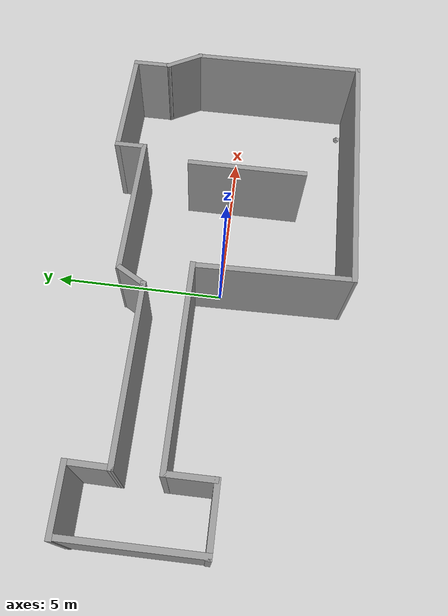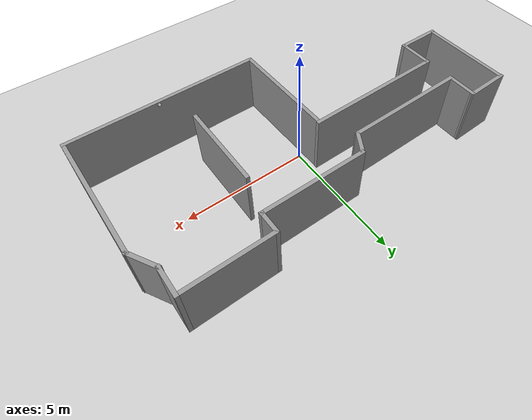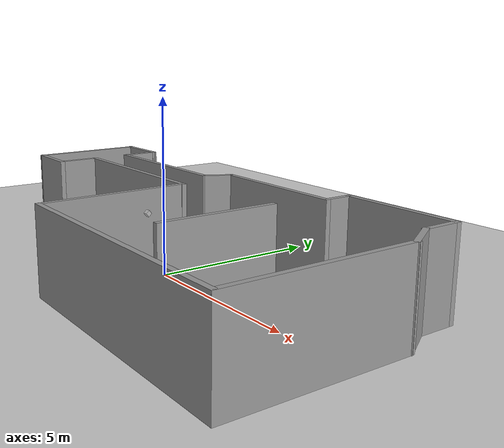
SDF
<?xml version="1.0" ?>
<!-- |    This document was autogenerated by xacro from src/ir_2526/ir_base/worlds/iaslab_empty_ur.sdf.xacro | -->
<!-- |    EDITING THIS FILE BY HAND IS NOT RECOMMENDED                                 | -->
<sdf version="1.6">
  <world name="default">
    <!-- Plugin for simulating physics -->
    <plugin filename="gz-sim-physics-system" name="gz::sim::systems::Physics">
      <engine>
        <filename>libgz-physics-bullet-featherstone-plugin.so</filename>
      </engine>
    </plugin>
    <!-- Plugin for handling user commands -->
    <plugin filename="gz-sim-user-commands-system" name="gz::sim::systems::UserCommands">
    </plugin>
    <!-- Plugin for broadcasting scene updates -->
    <plugin filename="gz-sim-scene-broadcaster-system" name="gz::sim::systems::SceneBroadcaster">
    </plugin>
    <!-- Plugin for handling sensors like the LIDAR -->
    <plugin filename="gz-sim-sensors-system" name="gz::sim::systems::Sensors">
      <render_engine>ogre2</render_engine>
    </plugin>
    <!-- Plugin for IMU -->
    <plugin filename="gz-sim-imu-system" name="gz::sim::systems::Imu">
    </plugin>
    <!-- To add realistic gravity, do: 0.0 0.0 -9.8, otherwise do 0.0 0.0 0.0 -->
    <gravity>0.0 0.0 -9.8</gravity>
    <!-- Include a model of the Sun from an external URI -->
    <include>
      <uri>
        https://fuel.gazebosim.org/1.0/OpenRobotics/models/Sun
      </uri>
    </include>
    <!-- Local Ground Plane with modified friction -->
    <model name="ground_plane">
      <static>true</static>
      <link name="link">
        <collision name="collision">
          <geometry>
            <plane>
              <normal>0 0 1</normal>
            </plane>
          </geometry>
          <surface>
            <friction>
              <torsional>
                <coefficient>0.0</coefficient>
              </torsional>
            </friction>
          </surface>
        </collision>
        <visual name="visual">
          <geometry>
            <plane>
              <normal>0 0 1</normal>
              <size>100 100</size>
            </plane>
          </geometry>
          <material>
            <ambient>0.8 0.8 0.8 1</ambient>
            <diffuse>0.8 0.8 0.8 1</diffuse>
            <specular>0.8 0.8 0.8 1</specular>
          </material>
        </visual>
      </link>
    </model>
    <!-- Define scene properties -->
    <scene>
      <shadows>false</shadows>
    </scene>
    <!-- Walls as separate static models -->
    <model name="Wall_1">
      <static>1</static>
      <link name="link">
        <collision name="collision">
          <geometry>
            <box>
              <size>1.2 0.15 2.5</size>
            </box>
          </geometry>
          <pose>0 0 1.25 0 0 0</pose>
        </collision>
        <visual name="visual">
          <geometry>
            <box>
              <size>1.2 0.15 2.5</size>
            </box>
          </geometry>
          <pose>0 0 1.25 0 0 0</pose>
          <material>
            <script>
              <uri>file://media/materials/scripts/gazebo.material</uri>
              <name>Gazebo/Grey</name>
            </script>
            <ambient>1 1 1 1</ambient>
          </material>
        </visual>
      </link>
      <pose>-5.79107 2.49368 0 0 0 1.5708</pose>
    </model>
    <model name="Wall_2">
      <static>1</static>
      <link name="link">
        <collision name="collision">
          <geometry>
            <box>
              <size>1.79256 0.15 2.5</size>
            </box>
          </geometry>
          <pose>0 0 1.25 0 0 0</pose>
        </collision>
        <visual name="visual">
          <geometry>
            <box>
              <size>1.79256 0.15 2.5</size>
            </box>
          </geometry>
          <pose>0 0 1.25 0 0 0</pose>
          <material>
            <script>
              <uri>file://media/materials/scripts/gazebo.material</uri>
              <name>Gazebo/Grey</name>
            </script>
            <ambient>1 1 1 1</ambient>
          </material>
        </visual>
      </link>
      <pose>-6.61216 3.04631 0 0 0 -3.1203</pose>
    </model>
    <model name="Wall_3">
      <static>1</static>
      <link name="link">
        <collision name="collision">
          <geometry>
            <box>
              <size>3.68565 0.15 2.5</size>
            </box>
          </geometry>
          <pose>0 0 1.25 0 0 0</pose>
        </collision>
        <visual name="visual">
          <geometry>
            <box>
              <size>3.68565 0.15 2.5</size>
            </box>
          </geometry>
          <pose>0 0 1.25 0 0 0</pose>
          <material>
            <script>
              <uri>file://media/materials/scripts/gazebo.material</uri>
              <name>Gazebo/Grey</name>
            </script>
            <ambient>1 1 1 1</ambient>
          </material>
        </visual>
      </link>
      <pose>-7.38434 1.26123 0 0 0 -1.5545</pose>
    </model>
    <model name="Wall_4">
      <static>1</static>
      <link name="link">
        <collision name="collision">
          <geometry>
            <box>
              <size>1.77744 0.15 2.5</size>
            </box>
          </geometry>
          <pose>0 0 1.25 0 0 0</pose>
        </collision>
        <visual name="visual">
          <geometry>
            <box>
              <size>1.77744 0.15 2.5</size>
            </box>
          </geometry>
          <pose>0 0 1.25 0 0 0</pose>
          <material>
            <script>
              <uri>file://media/materials/scripts/gazebo.material</uri>
              <name>Gazebo/Grey</name>
            </script>
            <ambient>1 1 1 1</ambient>
          </material>
        </visual>
      </link>
      <pose>-6.56193 -0.508986 0 0 0 -0.003224</pose>
    </model>
    <model name="Wall_5">
      <static>1</static>
      <link name="link">
        <collision name="collision">
          <geometry>
            <box>
              <size>1.35672 0.15 2.5</size>
            </box>
          </geometry>
          <pose>0 0 1.25 0 0 0</pose>
        </collision>
        <visual name="visual">
          <geometry>
            <box>
              <size>1.35672 0.15 2.5</size>
            </box>
          </geometry>
          <pose>0 0 1.25 0 0 0</pose>
          <material>
            <script>
              <uri>file://media/materials/scripts/gazebo.material</uri>
              <name>Gazebo/Grey</name>
            </script>
            <ambient>1 1 1 1</ambient>
          </material>
        </visual>
      </link>
      <pose>-5.75827 0.136795 0 0 0 1.5846</pose>
    </model>
    <model name="Wall_6">
      <static>1</static>
      <link name="link">
        <collision name="collision">
          <geometry>
            <box>
              <size>5.64664 0.15 2.5</size>
            </box>
          </geometry>
          <pose>0 0 1.25 0 0 0</pose>
        </collision>
        <visual name="visual">
          <geometry>
            <box>
              <size>5.64664 0.15 2.5</size>
            </box>
          </geometry>
          <pose>0 0 1.25 0 0 0</pose>
          <material>
            <script>
              <uri>file://media/materials/scripts/gazebo.material</uri>
              <name>Gazebo/Grey</name>
            </script>
            <ambient>1 1 1 1</ambient>
          </material>
        </visual>
      </link>
      <pose>-3.02009 0.766397 0 0 0 0.007796</pose>
    </model>
    <model name="Wall_7">
      <static>1</static>
      <link name="link">
        <collision name="collision">
          <geometry>
            <box>
              <size>4.38998 0.15 2.5</size>
            </box>
          </geometry>
          <pose>0 0 1.25 0 0 0</pose>
        </collision>
        <visual name="visual">
          <geometry>
            <box>
              <size>4.38998 0.15 2.5</size>
            </box>
          </geometry>
          <pose>0 0 1.25 0 0 0</pose>
          <material>
            <script>
              <uri>file://media/materials/scripts/gazebo.material</uri>
              <name>Gazebo/Grey</name>
            </script>
            <ambient>1 1 1 1</ambient>
          </material>
        </visual>
      </link>
      <pose>-0.242291 -1.34162 0 0 0 -1.54891</pose>
    </model>
    <model name="Wall_8">
      <static>1</static>
      <link name="link">
        <collision name="collision">
          <geometry>
            <box>
              <size>7.75 0.15 2.5</size>
            </box>
          </geometry>
          <pose>0 0 1.25 0 0 0</pose>
        </collision>
        <visual name="visual">
          <geometry>
            <box>
              <size>7.75 0.15 2.5</size>
            </box>
          </geometry>
          <pose>0 0 1.25 0 0 0</pose>
          <material>
            <script>
              <uri>file://media/materials/scripts/gazebo.material</uri>
              <name>Gazebo/Grey</name>
            </script>
            <ambient>1 1 1 1</ambient>
          </material>
        </visual>
      </link>
      <pose>3.60739 -3.55107 0 0 0 0</pose>
    </model>
    <model name="Wall_9">
      <static>1</static>
      <link name="link">
        <collision name="collision">
          <geometry>
            <box>
              <size>5.25 0.15 2.5</size>
            </box>
          </geometry>
          <pose>0 0 1.25 0 0 0</pose>
        </collision>
        <visual name="visual">
          <geometry>
            <box>
              <size>5.25 0.15 2.5</size>
            </box>
          </geometry>
          <pose>0 0 1.25 0 0 0</pose>
          <material>
            <script>
              <uri>file://media/materials/scripts/gazebo.material</uri>
              <name>Gazebo/Grey</name>
            </script>
            <ambient>1 1 1 1</ambient>
          </material>
        </visual>
      </link>
      <pose>7.40739 -1.00107 0 0 0 1.5708</pose>
    </model>
    <model name="Wall_10">
      <static>1</static>
      <link name="link">
        <collision name="collision">
          <geometry>
            <box>
              <size>1.25 0.15 2.5</size>
            </box>
          </geometry>
          <pose>0 0 1.25 0 0 0</pose>
        </collision>
        <visual name="visual">
          <geometry>
            <box>
              <size>1.25 0.15 2.5</size>
            </box>
          </geometry>
          <pose>0 0 1.25 0 0 0</pose>
          <material>
            <script>
              <uri>file://media/materials/scripts/gazebo.material</uri>
              <name>Gazebo/Grey</name>
            </script>
            <ambient>1 1 1 1</ambient>
          </material>
        </visual>
      </link>
      <pose>7.13239 2.02524 0 0 0 2.0944</pose>
    </model>
    <model name="Wall_11">
      <static>1</static>
      <link name="link">
        <collision name="collision">
          <geometry>
            <box>
              <size>1.20114 0.15 2.5</size>
            </box>
          </geometry>
          <pose>0 0 1.25 0 0 0</pose>
        </collision>
        <visual name="visual">
          <geometry>
            <box>
              <size>1.20114 0.15 2.5</size>
            </box>
          </geometry>
          <pose>0 0 1.25 0 0 0</pose>
          <material>
            <script>
              <uri>file://media/materials/scripts/gazebo.material</uri>
              <name>Gazebo/Grey</name>
            </script>
            <ambient>1 1 1 1</ambient>
          </material>
        </visual>
      </link>
      <pose>6.85739 3.02713 0 0 0 1.5708</pose>
    </model>
    <model name="Wall_12">
      <static>1</static>
      <link name="link">
        <collision name="collision">
          <geometry>
            <box>
              <size>3.5 0.15 2.5</size>
            </box>
          </geometry>
          <pose>0 0 1.25 0 0 0</pose>
        </collision>
        <visual name="visual">
          <geometry>
            <box>
              <size>3.5 0.15 2.5</size>
            </box>
          </geometry>
          <pose>0 0 1.25 0 0 0</pose>
          <material>
            <script>
              <uri>file://media/materials/scripts/gazebo.material</uri>
              <name>Gazebo/Grey</name>
            </script>
            <ambient>1 1 1 1</ambient>
          </material>
        </visual>
      </link>
      <pose>5.18239 3.55269 0 0 0 3.14159</pose>
    </model>
    <model name="Wall_13">
      <static>1</static>
      <link name="link">
        <collision name="collision">
          <geometry>
            <box>
              <size>0.951136 0.15 2.5</size>
            </box>
          </geometry>
          <pose>0 0 1.25 0 0 0</pose>
        </collision>
        <visual name="visual">
          <geometry>
            <box>
              <size>0.951136 0.15 2.5</size>
            </box>
          </geometry>
          <pose>0 0 1.25 0 0 0</pose>
          <material>
            <script>
              <uri>file://media/materials/scripts/gazebo.material</uri>
              <name>Gazebo/Grey</name>
            </script>
            <ambient>1 1 1 1</ambient>
          </material>
        </visual>
      </link>
      <pose>3.50739 3.15213 0 0 0 -1.5708</pose>
    </model>
    <model name="Wall_14">
      <static>1</static>
      <link name="link">
        <collision name="collision">
          <geometry>
            <box>
              <size>4.25 0.15 2.5</size>
            </box>
          </geometry>
          <pose>0 0 1.25 0 0 0</pose>
        </collision>
        <visual name="visual">
          <geometry>
            <box>
              <size>4.25 0.15 2.5</size>
            </box>
          </geometry>
          <pose>0 0 1.25 0 0 0</pose>
          <material>
            <script>
              <uri>file://media/materials/scripts/gazebo.material</uri>
              <name>Gazebo/Grey</name>
            </script>
            <ambient>1 1 1 1</ambient>
          </material>
        </visual>
      </link>
      <pose>1.45739 2.75156 0 0 0 3.14159</pose>
    </model>
    <model name="Wall_15">
      <static>1</static>
      <link name="link">
        <collision name="collision">
          <geometry>
            <box>
              <size>0.9 0.15 2.5</size>
            </box>
          </geometry>
          <pose>0 0 1.25 0 0 0</pose>
        </collision>
        <visual name="visual">
          <geometry>
            <box>
              <size>0.9 0.15 2.5</size>
            </box>
          </geometry>
          <pose>0 0 1.25 0 0 0</pose>
          <material>
            <script>
              <uri>file://media/materials/scripts/gazebo.material</uri>
              <name>Gazebo/Grey</name>
            </script>
            <ambient>1 1 1 1</ambient>
          </material>
        </visual>
      </link>
      <pose>-0.805112 2.3835 0 0 0 -2.0944</pose>
    </model>
    <model name="Wall_16">
      <static>1</static>
      <link name="link">
        <collision name="collision">
          <geometry>
            <box>
              <size>4.92373 0.15 2.5</size>
            </box>
          </geometry>
          <pose>0 0 1.25 0 0 0</pose>
        </collision>
        <visual name="visual">
          <geometry>
            <box>
              <size>4.92373 0.15 2.5</size>
            </box>
          </geometry>
          <pose>0 0 1.25 0 0 0</pose>
          <material>
            <script>
              <uri>file://media/materials/scripts/gazebo.material</uri>
              <name>Gazebo/Grey</name>
            </script>
            <ambient>1 1 1 1</ambient>
          </material>
        </visual>
      </link>
      <pose>-3.40434 1.98962 0 0 0 -3.13077</pose>
    </model>
    <model name="Wall_17">
      <static>1</static>
      <link name="link">
        <collision name="collision">
          <geometry>
            <box>
              <size>3.5 0.15 2.5</size>
            </box>
          </geometry>
          <pose>0 0 1.25 0 0 0</pose>
        </collision>
        <visual name="visual">
          <geometry>
            <box>
              <size>3.5 0.15 2.5</size>
            </box>
          </geometry>
          <pose>0 0 1.25 0 0 0</pose>
          <material>
            <script>
              <uri>file://media/materials/scripts/gazebo.material</uri>
              <name>Gazebo/Grey</name>
            </script>
            <ambient>1 1 1 1</ambient>
          </material>
        </visual>
      </link>
      <pose>3.10875 -0.378342 0 0 0 -1.5708</pose>
    </model>
    <!-- 7 - Camera -->
    <model name="external_camera">
      <static>true</static>
      <link name="link">
        <pose>4.03 -2.83 3.00 0 0.9 1.65</pose>
        <inertial>
          <mass>0.1</mass>
          <inertia>
            <ixx>0.000166667</ixx>
            <iyy>0.000166667</iyy>
            <izz>0.000166667</izz>
          </inertia>
        </inertial>
        <collision name="collision">
          <geometry>
            <box>
              <size>0.1 0.1 0.1</size>
            </box>
          </geometry>
        </collision>
        <visual name="visual">
          <geometry>
            <box>
              <size>0.1 0.1 0.1</size>
            </box>
          </geometry>
        </visual>
        <sensor name="depth_camera" type="depth">
          <camera>
            <horizontal_fov>1.047</horizontal_fov>
            <image>
              <width>320</width>
              <height>240</height>
            </image>
            <clip>
              <near>0.1</near>
              <far>100</far>
            </clip>
          </camera>
          <always_on>1</always_on>
          <update_rate>30</update_rate>
          <visualize>true</visualize>
        </sensor>
        <sensor name="rgb_camera" type="camera">
          <camera>
            <horizontal_fov>1.047</horizontal_fov>
            <image>
              <width>320</width>
              <height>240</height>
            </image>
          </camera>
          <always_on>1</always_on>
          <update_rate>30</update_rate>
          <visualize>true</visualize>
        </sensor>
      </link>
    </model>
  </world>
</sdf>
